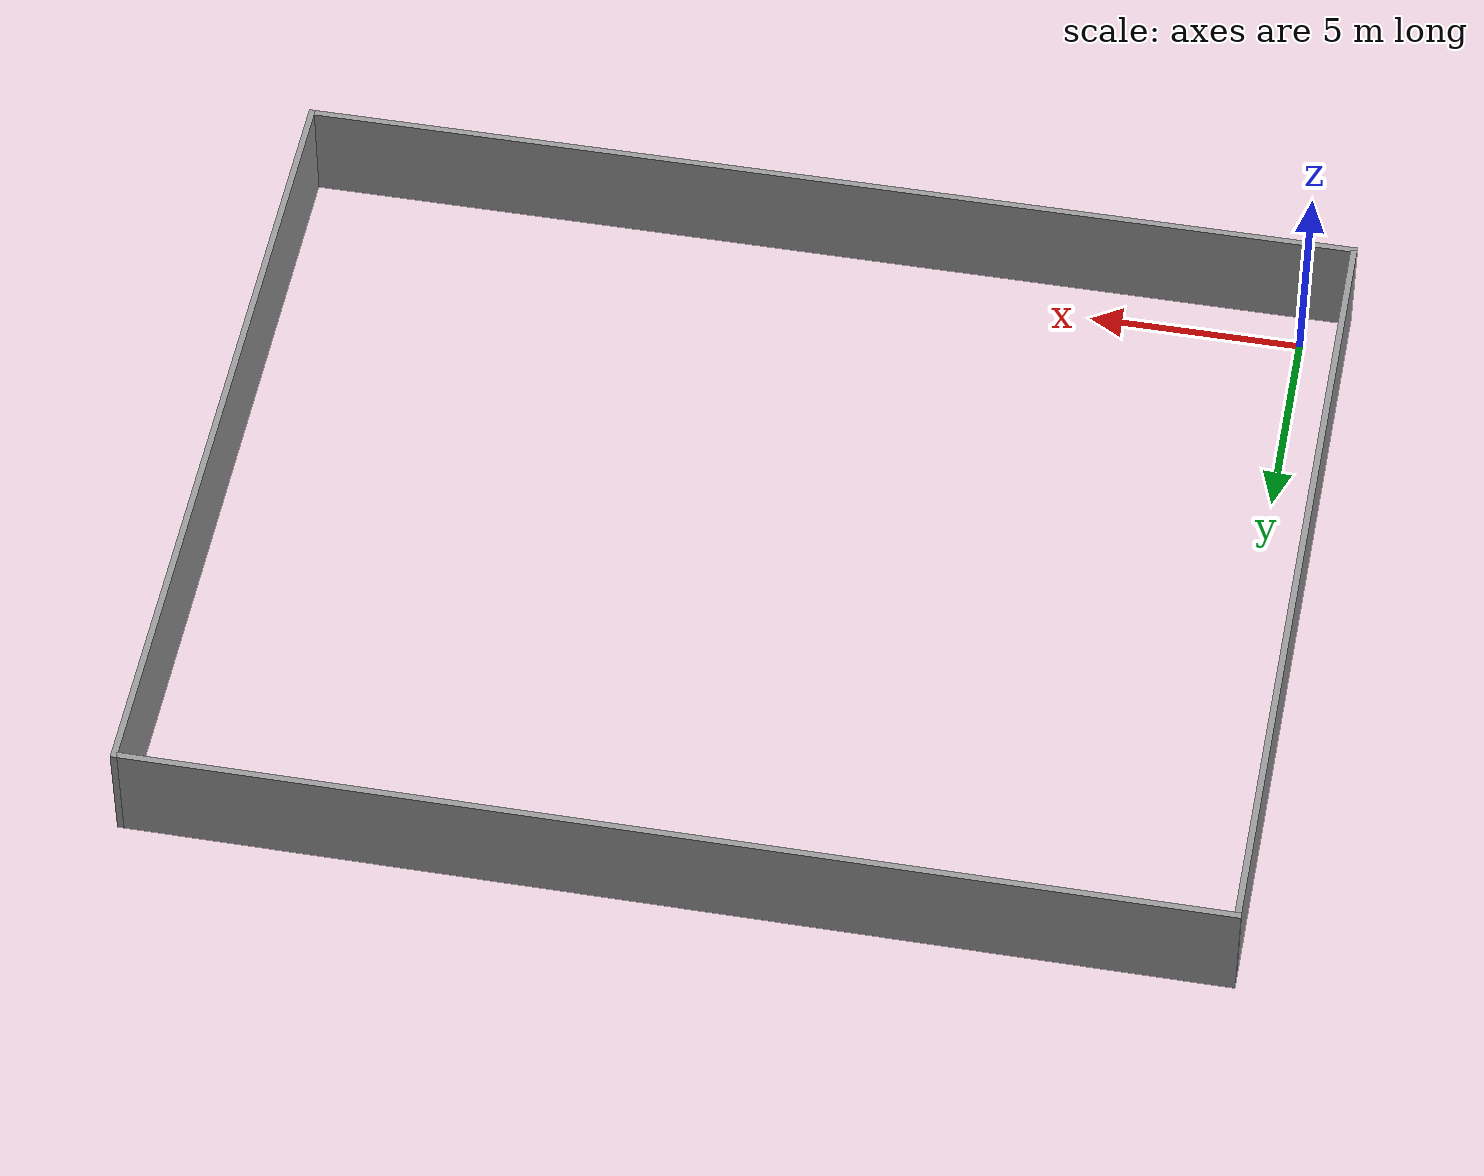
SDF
<?xml version='1.0'?>
<sdf version='1.6'>
  <model name='sanal_fabrika'>
    <pose frame=''>11.5 9 0 0 -0 0</pose>
    <link name='Wall_10'>
      <collision name='Wall_10_Collision'>
        <geometry>
          <box>
            <size>25.15 0.15 2.5</size>
          </box>
        </geometry>
        <pose frame=''>0 0 1.25 0 -0 0</pose>
      </collision>
      <visual name='Wall_10_Visual'>
        <pose frame=''>0 0 1.25 0 -0 0</pose>
        <geometry>
          <box>
            <size>25.15 0.15 2.5</size>
          </box>
        </geometry>
        <material>
          <script>
            <uri>file://media/materials/scripts/gazebo.material</uri>
            <name>Gazebo/Grey</name>
          </script>
          <ambient>1 1 1 1</ambient>
        </material>
        <meta>
          <layer>0</layer>
        </meta>
      </visual>
      <pose frame=''>0 -10 0 0 -0 0</pose>
    </link>
    <link name='Wall_11'>
      <collision name='Wall_11_Collision'>
        <geometry>
          <box>
            <size>20.15 0.15 2.5</size>
          </box>
        </geometry>
        <pose frame=''>0 0 1.25 0 -0 0</pose>
      </collision>
      <visual name='Wall_11_Visual'>
        <pose frame=''>0 0 1.25 0 -0 0</pose>
        <geometry>
          <box>
            <size>20.15 0.15 2.5</size>
          </box>
        </geometry>
        <material>
          <script>
            <uri>file://media/materials/scripts/gazebo.material</uri>
            <name>Gazebo/Grey</name>
          </script>
          <ambient>1 1 1 1</ambient>
        </material>
        <meta>
          <layer>0</layer>
        </meta>
      </visual>
      <pose frame=''>12.5 0 0 0 -0 1.5708</pose>
    </link>
    <link name='Wall_12'>
      <collision name='Wall_12_Collision'>
        <geometry>
          <box>
            <size>25.15 0.15 2.5</size>
          </box>
        </geometry>
        <pose frame=''>0 0 1.25 0 -0 0</pose>
      </collision>
      <visual name='Wall_12_Visual'>
        <pose frame=''>0 0 1.25 0 -0 0</pose>
        <geometry>
          <box>
            <size>25.15 0.15 2.5</size>
          </box>
        </geometry>
        <material>
          <script>
            <uri>file://media/materials/scripts/gazebo.material</uri>
            <name>Gazebo/Grey</name>
          </script>
          <ambient>1 1 1 1</ambient>
        </material>
        <meta>
          <layer>0</layer>
        </meta>
      </visual>
      <pose frame=''>0 10 0 0 -0 3.14159</pose>
    </link>
    <link name='Wall_9'>
      <collision name='Wall_9_Collision'>
        <geometry>
          <box>
            <size>20.15 0.15 2.5</size>
          </box>
        </geometry>
        <pose frame=''>0 0 1.25 0 -0 0</pose>
      </collision>
      <visual name='Wall_9_Visual'>
        <pose frame=''>0 0 1.25 0 -0 0</pose>
        <geometry>
          <box>
            <size>20.15 0.15 2.5</size>
          </box>
        </geometry>
        <material>
          <script>
            <uri>file://media/materials/scripts/gazebo.material</uri>
            <name>Gazebo/Grey</name>
          </script>
          <ambient>1 1 1 1</ambient>
        </material>
        <meta>
          <layer>0</layer>
        </meta>
      </visual>
      <pose frame=''>-12.5 0 0 0 -0 -1.5708</pose>
    </link>
    <static>1</static>
  </model>
</sdf>
